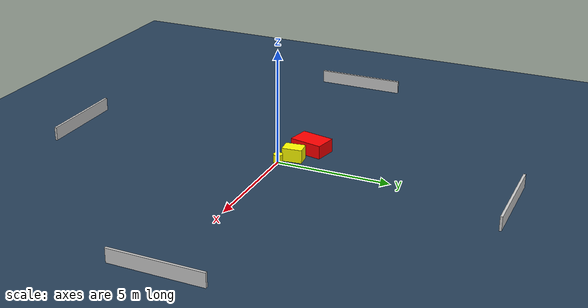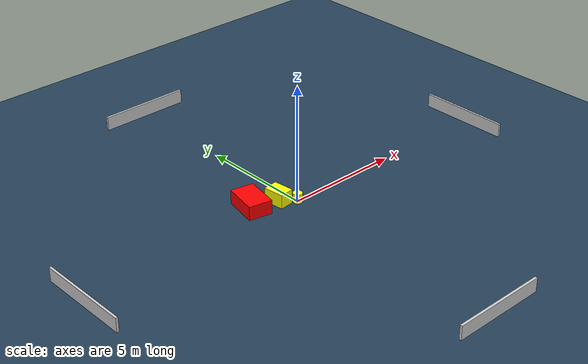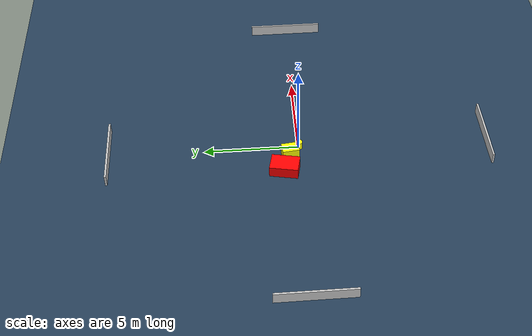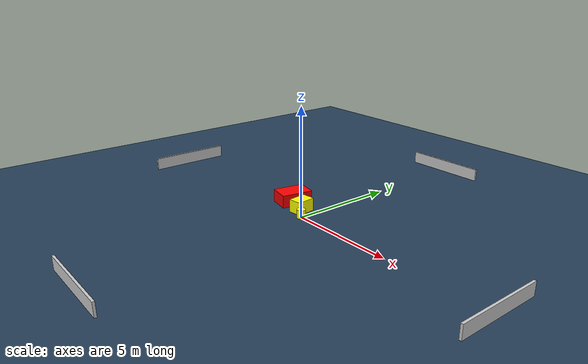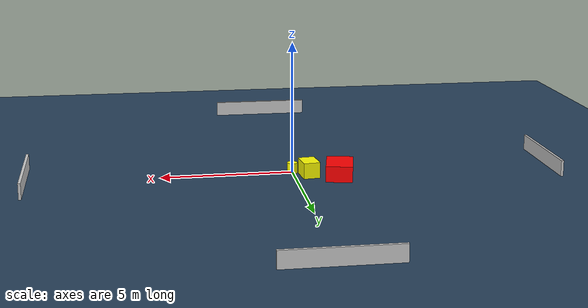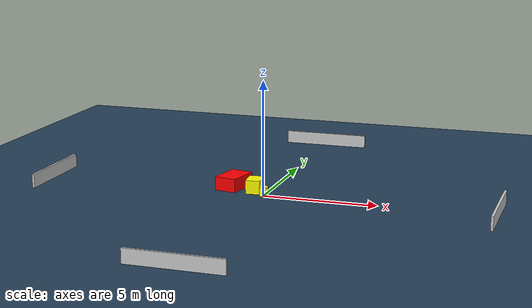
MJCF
<?xml version="1.0" ?>
<mujoco model="generated_environment">
  <option timestep="0.01" integrator="RK4" cone="elliptic"/>
  <default>
    <geom density="1"/>
  </default>
  <asset>
    <texture builtin="gradient" height="3072" name="skybox" rgb1="0.3 0.5 0.7" rgb2="0 0 0" type="skybox" width="512"/>
    <texture builtin="checker" height="300" name="groundplane" rgb1="0.2 0.3 0.4" rgb2="0.1 0.2 0.3" type="2d" width="300"/>
    <material name="groundplane" reflectance="0.2" texrepeat="5 5" texture="groundplane"/>
  </asset>
  <worldbody>
    <light dir="0 0 -1" directional="true" pos="0 0 1.5"/>
    <geom condim="3" friction="0.5 0.005 0.001" material="groundplane" name="floor" pos="0 0 0" size="0 0 0.05" type="plane"/>
    <body name="walls">
      <geom name="wall_1" condim="4" pos="-10.0 0.0 0.3" rgba="0.800000011920929 0.800000011920929 0.800000011920929 1.0" size="0.05 2.0 0.3" type="box"/>
      <geom name="wall_2" condim="4" pos="10.0 0.0 0.3" rgba="0.800000011920929 0.800000011920929 0.800000011920929 1.0" size="0.05 2.0 0.3" type="box"/>
      <geom name="wall_3" condim="4" pos="0.0 -10.0 0.3" rgba="0.800000011920929 0.800000011920929 0.800000011920929 1.0" size="2.0 0.05 0.3" type="box"/>
      <geom name="wall_4" condim="4" pos="0.0 10.0 0.3" rgba="0.800000011920929 0.800000011920929 0.800000011920929 1.0" size="2.0 0.05 0.3" type="box"/>
    </body>
    <body name="robot">
      <joint name="joint_x" type="slide" pos="0 0 0" axis="1 0 0"/>
      <joint name="joint_y" type="slide" pos="0 0 0" axis="0 1 0"/>
      <geom name="robot" type="cylinder" pos="0.0 0.0 0.2" size="0.2 0.2 0.0" mass="5.0" friction="1.0 0.005 0.0001" condim="4" rgba="1.0 1.0 0.0 1.0"/>
    </body>
    <body name="obstacle_1_movable">
      <geom name="obstacle_1_movable" condim="4" pos="-0.5675127341693029 0.4833339899850976 0.3" euler="0 0 96.32842110574931" friction="0.0 0.005 0.001" rgba="1.0 1.0 0.0 1.0" size="0.4403813392459236 0.31432705450186543 0.3" type="box" mass="0.1"/>
      <joint type="free"/>
    </body>
    <body name="obstacle_2_static">
      <geom name="obstacle_2_static" condim="4" pos="-1.6691610234594472 0.8447293365805914 0.3" euler="0 0 78.3490740579539" friction="0.0 0.005 0.001" rgba="1.0 0.0 0.0 1.0" size="0.7418931742208701 0.5008390514758451 0.3" type="box"/>
    </body>
  </worldbody>
  <actuator>
    <motor name="actuator_x" joint="joint_x" gear="1" ctrlrange="-1 1"/>
    <motor name="actuator_y" joint="joint_y" gear="1" ctrlrange="-1 1"/>
  </actuator>
</mujoco>
